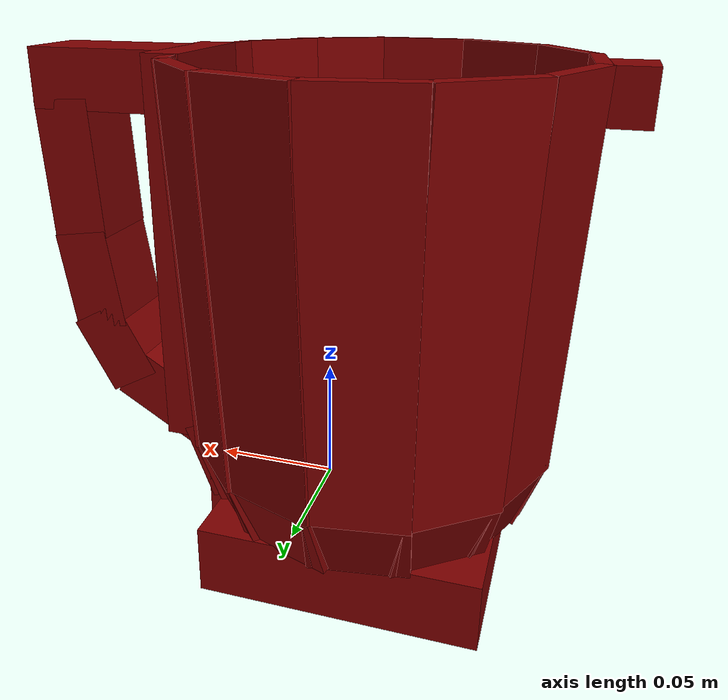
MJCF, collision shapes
<mujoco model="model">
  <option timestep="0.002" gravity="0.0 0.0 -9.81"/>
  <compiler angle="radian"/>
  <asset>
    <mesh file="visuals/blade.obj" name="blade_vis"/>
    <mesh file="visuals/pitcher.obj" name="pitcher_vis"/>
    <mesh file="visuals/pitcher_main.obj" name="pitcher_main_vis"/>
    <texture file="visuals/T_BC001.png" name="pitcher_material" type="2d"/>
    <material name="pitcher_material" rgba="1 1 1 1.0" texture="pitcher_material" shininess="0.141421377658844" specular="1"/>
    <texture file="visuals/T_BC001.png" name="blade_material" type="2d"/>
    <material name="blade_material" rgba="1 1 1 1.0" texture="blade_material" shininess="0.141421377658844" specular="1"/>
    <texture file="visuals/T_BC001.png" name="pitcher_main_material" type="2d"/>
    <material name="pitcher_main_material" rgba="1 1 1 0.75" texture="pitcher_main_material" shininess="0.141421377658844" specular="0.3"/>
  </asset>
  <default>
    <default class="visual">
      <geom conaffinity="0" contype="0" group="1" type="mesh"/>
    </default>
    <default class="collision">
      <geom group="0" rgba="0.5 0 0 0.5" density="1.0" solref="0.004 1" solimp="0.998 0.998 0.001"/>
    </default>
    <default class="spawn">
      <geom group="0" rgba="1 1 1 0.5" contype="0" conaffinity="0"/>
      <site group="0" rgba="1 1 1 0.5"/>
    </default>
    <default class="region">
      <geom group="1" conaffinity="0" contype="0" rgba="0 1 0 0" mass="0"/>
    </default>
  </default>
  <worldbody>
    <body>
      <body name="object">
        <body name="pitcher">
          <geom mesh="pitcher_vis" type="mesh" solimp="0.998 0.998 0.001" solref="0.001 1" friction="0.95 0.3 0.1" class="visual" material="pitcher_material"/>
          <geom type="box" pos="-0.02157444 0.01190083 -0.00689259" size="0.05418802425265312 0.05418802425265312 0.013749852776527405" quat="1.0 0.0 0.0 0.0" class="collision"/>
          <geom type="cylinder" pos="-0.02033783 0.01155110 0.01156995" size="0.015780305489897728 0.008454694412648678" quat="1.0 0.0 0.0 0.0" class="collision"/>
          <geom class="collision" type="box" pos="0.08402344 0.01095060 0.16750628" size="0.027125367894768715 0.015223980881273746 0.011412791907787323" quat="1.0 0.0 0.0 0.0" name="pitcher_handle_4"/>
          <geom class="collision" type="box" pos="0.09838337 0.01095060 0.13288766" size="0.027125367894768715 0.015223980881273746 0.011412791907787323" quat="0.726495087146759 0.0 -0.6871716380119324 0.0" name="pitcher_handle_3"/>
          <geom class="collision" type="box" pos="0.08612596 0.01095060 0.05867285" size="0.01660267449915409 0.015223980881273746 0.011412792839109898" quat="0.8605725169181824 0.0 -0.5093279480934143 0.0" name="pitcher_handle_1"/>
          <geom class="collision" type="box" pos="0.06229477 0.01095060 0.03795881" size="0.020991992205381393 0.015223980881273746 0.011412791907787323" quat="0.9642720222473145 0.0 -0.26491403579711914 0.0" name="pitcher_handle_0"/>
          <geom class="collision" type="box" pos="0.09439433 0.01095060 0.08750539" size="0.020037682726979256 0.015223980881273746 0.011412792839109898" quat="0.7592610120773315 0.0 -0.6507862210273743 0.0" name="pitcher_handle_2"/>
          <geom type="box" pos="0.05137207 0.01075696 0.10376528" size="0.007271790876984596 0.02493887022137642 0.07511977106332779" quat="1.0 0.0 0.0 0.0" class="collision"/>
          <geom type="box" pos="0.04190674 0.01075696 0.01782715" size="0.016089878976345062 0.02493887022137642 0.0036388104781508446" quat="0.8233922719955444 0.0 -0.5674726366996765 0.0" class="collision"/>
          <geom type="box" pos="0.03728200 0.01075696 -0.00416618" size="0.0036560611333698034 0.02493887022137642 0.016093773767352104" quat="1.0 0.0 0.0 0.0" class="collision"/>
          <body name="blade">
            <geom mesh="blade_vis" type="mesh" solimp="0.998 0.998 0.001" solref="0.001 1" friction="0.95 0.3 0.1" class="visual" material="blade_material"/>
            <geom type="box" pos="-0.02003413 0.00995959 0.02333123" size="0.014491913840174675 0.017638348042964935 0.0007777379360049963" quat="1.0 0.0 0.0 0.0" class="collision"/>
            <geom type="box" pos="-0.02021896 0.04334842 0.02333123" size="0.0050698015838861465 0.016161534935235977 0.0007777377031743526" quat="1.0 0.0 0.0 0.0" class="collision"/>
            <geom type="box" pos="-0.02021896 -0.02087218 0.02333123" size="0.0050698015838861465 0.016161534935235977 0.0007777377031743526" quat="1.0 0.0 0.0 0.0" class="collision"/>
            <geom type="box" pos="-0.05190882 0.01121911 0.02832314" size="0.0050698015838861465 0.01778339222073555 0.0007777350838296115" quat="0.6976117491722107 -0.1154894158244133 0.1154894158244133 -0.6976118087768555" class="collision"/>
            <geom type="box" pos="0.01131646 0.01121911 0.02842481" size="0.0050698015838861465 0.01746790111064911 0.0007777350838296115" quat="0.11548933386802673 0.6976116299629211 0.6976119875907898 0.11548939347267151" class="collision"/>
          </body>
          <body name="pitcher_main">
            <geom class="region" type="cylinder" size="0.05900000035762787 0.05907276272773743" pos="-0.02123482 0.01084632 0.09467969" rgba="0 0 1 0.5" name="reg_int"/>
            <geom mesh="pitcher_main_vis" type="mesh" solimp="0.998 0.998 0.001" solref="0.001 1" friction="0.95 0.3 0.1" class="visual" material="pitcher_main_material"/>
            <geom type="box" pos="-0.01976319 -0.05864468 0.10461194" size="0.018826475366950035 0.002732254099100828 0.0740242451429367" quat="0.999740719795227 0.022769350558519363 0.0 0.0" class="collision"/>
            <geom type="box" pos="-0.01976319 -0.05029354 0.01893365" size="0.018826471641659737 0.002732254099100828 0.013669250532984734" quat="0.9850984811782837 0.1719912439584732 0.0 0.0" class="collision"/>
            <geom type="box" pos="-0.05275797 -0.05110196 0.10461194" size="0.018826475366950035 0.002732254331931472 0.0740242451429367" quat="0.9696826338768005 0.02208472415804863 -0.005541310645639896 -0.2433045655488968" class="collision"/>
            <geom type="box" pos="-0.04881539 -0.04374006 0.01893365" size="0.018826471641659737 0.002732254099100828 0.013669250532984734" quat="0.9554806351661682 0.16682018339633942 -0.041857097297906876 -0.23974105715751648" class="collision"/>
            <geom type="box" pos="-0.07174823 -0.02364637 0.01893365" size="0.018826471641659737 0.002732254331931472 0.013669250532984734" quat="0.8656151294708252 0.1511302888393402 -0.08210128545761108 -0.47024402022361755" class="collision"/>
            <geom type="box" pos="-0.07875415 -0.02819157 0.10461194" size="0.018826475366950035 0.0027322538662701845 0.0740242451429367" quat="0.878481388092041 0.020007604733109474 -0.010869103483855724 -0.47723373770713806" class="collision"/>
            <geom type="box" pos="-0.09038664 0.00361699 0.10461194" size="0.018826475366950035 0.0027322538662701845 0.0740242451429367" quat="0.7358109354972839 0.016758248209953308 -0.01541435532271862 -0.6768041253089905" class="collision"/>
            <geom type="box" pos="-0.08206459 0.00431345 0.01893365" size="0.018826471641659737 0.002732254331931472 0.013669250532984734" quat="0.7250343561172485 0.12658587098121643 -0.11643454432487488 -0.6668914556503296" class="collision"/>
            <geom type="box" pos="-0.07793577 0.03386298 0.01893365" size="0.018826471641659737 0.002732254099100828 0.013669250532984734" quat="0.5405582189559937 0.09437765926122665 -0.1437840461730957 -0.823538601398468" class="collision"/>
            <geom type="box" pos="-0.08559779 0.03718490 0.10461194" size="0.018826475366950035 0.002732254099100828 0.0740242451429367" quat="0.5485929250717163 0.01249431911855936 -0.01903505250811577 -0.8357794880867004" class="collision"/>
            <geom type="box" pos="-0.06483591 0.06504173 0.10461194" size="0.018826475366950035 0.002732254099100828 0.0740242451429367" quat="0.3224077522754669 0.007342902012169361 -0.021552789956331253 -0.9463270306587219" class="collision"/>
            <geom type="box" pos="-0.05973734 0.05842764 0.01893365" size="0.018826471641659737 0.002732254099100828 0.013669250532984734" quat="0.31768572330474854 0.05546572059392929 -0.16280220448970795 -0.9324670433998108" class="collision"/>
            <geom type="box" pos="-0.03218979 0.07107461 0.01893365" size="0.018826471641659737 0.002732254331931472 0.013669250532984734" quat="0.07681706547737122 0.013411737978458405 -0.17146769165992737 -0.9820988178253174" class="collision"/>
            <geom type="box" pos="-0.03348825 0.07932418 0.10461194" size="0.018826475366950035 0.002732254099100828 0.0740242451429367" quat="0.0779588595032692 0.0017755276057869196 -0.02269996888935566 -0.9966965317726135" class="collision"/>
            <geom type="box" pos="0.00065384 0.07687992 0.10461194" size="0.018826475366950035 0.002732254099100828 0.0740242451429367" quat="0.1697516292333603 0.0038661323487758636 0.022438697516918182 0.9852238297462463" class="collision"/>
            <geom type="box" pos="-0.00214096 0.06901032 0.01893364" size="0.018826471641659737 0.002732254099100828 0.013669250532984734" quat="0.16726543009281158 0.0292033813893795 0.16949385404586792 0.970794141292572" class="collision"/>
            <geom type="box" pos="0.02331352 0.05282657 0.01893364" size="0.018826471641659737 0.002732254099100828 0.013669250532984734" quat="0.40139052271842957 0.07007995247840881 0.1570662409067154 0.899613618850708" class="collision"/>
            <geom type="box" pos="0.02952850 0.05840471 0.10461194" size="0.018826475366950035 0.002732254099100828 0.0740242451429367" quat="0.4073566794395447 0.009277631528675556 0.020793424919247627 0.9129852652549744" class="collision"/>
            <geom type="box" pos="0.04610360 0.02824147 0.10461194" size="0.018826475366950035 0.002732253633439541 0.0740242451429367" quat="0.6206277012825012 0.014134923927485943 0.01785062998533249 0.783774733543396" class="collision"/>
            <geom type="box" pos="0.03797486 0.02632703 0.01893364" size="0.018826471641659737 0.002732254099100828 0.013669250532984734" quat="0.6115379333496094 0.10677023231983185 0.13483738899230957 0.7722955346107483" class="collision"/>
            <geom type="box" pos="0.03808562 -0.00414316 0.01893364" size="0.018826471641659737 0.0027322538662701845 0.013669250532984734" quat="0.7845726609230042 0.13698099553585052 0.10400602221488953 0.5957052111625671" class="collision"/>
            <geom type="box" pos="0.04612978 -0.00638658 0.10461194" size="0.018826475366950035 0.002732254099100828 0.0740242451429367" quat="0.7962345480918884 0.018134426325559616 0.013768970035016537 0.6045594215393066" class="collision"/>
            <geom type="box" pos="0.02988999 -0.03626264 0.10461194" size="0.018826475366950035 0.002732254099100828 0.0740242451429367" quat="0.9198863506317139 0.020950598642230034 0.008917027153074741 0.3915235102176666" class="collision"/>
            <geom type="box" pos="0.02387142 -0.03047313 0.01893364" size="0.018826471641659737 0.002732254099100828 0.013669250532984734" quat="0.9064136147499084 0.158253476023674 0.06735609471797943 0.3857892155647278" class="collision"/>
            <geom type="box" pos="0.00700904 -0.04340503 0.01893364" size="0.018826471641659737 0.002732254099100828 0.013669250532984734" quat="0.9596347808837891 0.16754570603370667 0.03885239362716675 0.2225310206413269" class="collision"/>
            <geom type="box" pos="0.01068451 -0.05090387 0.10461194" size="0.018826475366950035 0.002732254099100828 0.0740242451429367" quat="0.9738985896110535 0.022180767729878426 0.005143522750586271 0.22583864629268646" class="collision"/>
            <geom type="box" pos="-0.10369241 0.01091495 0.16857263" size="0.00855797715485096 0.010857014916837215 0.009734752587974072" quat="1.0 0.0 0.0 0.0" class="collision"/>
          </body>
        </body>
        <geom class="region" name="reg_bbox" density="0" type="box" pos="-1.4000000000000123e-05 0.0108855 0.078606" size="0.112236 0.075434 0.10036099999999999"/>
      </body>
      <site rgba="0 1 0 0" size="0.005" pos="-0.01567838 0.0108836 0.17657199" name="anchor_site"/>
    </body>
  </worldbody>
</mujoco>
